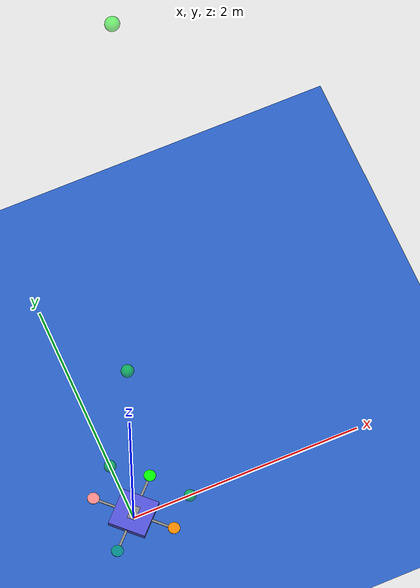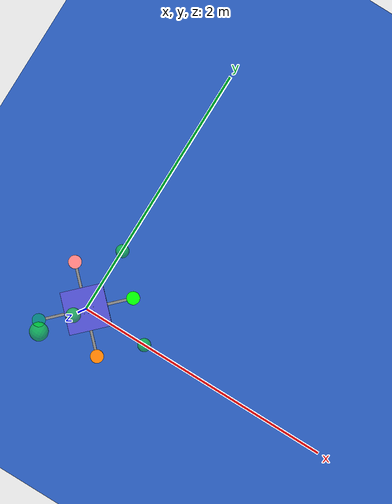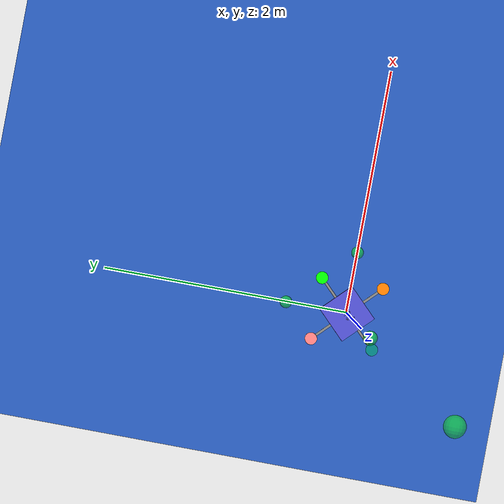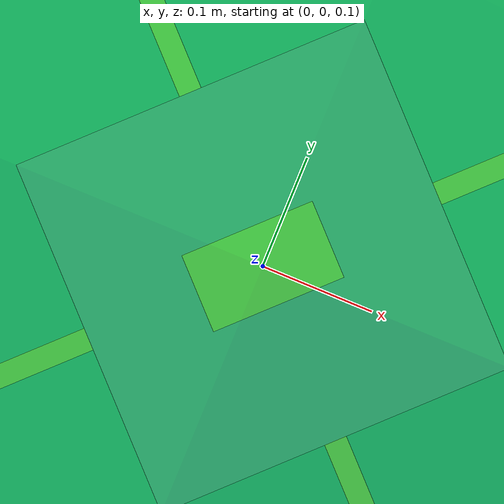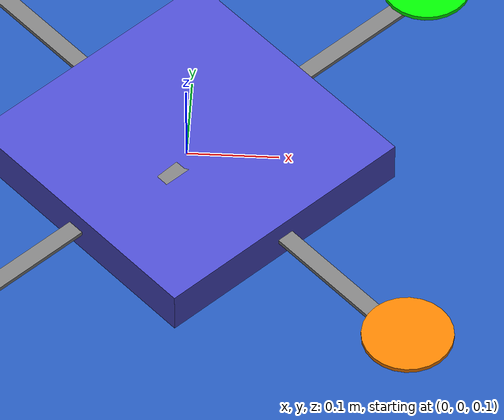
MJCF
<mujoco model="Quadrotor">
  <compiler inertiafromgeom="true" coordinate="local"/>
  <option timestep="0.04" gravity="0 0 -9.81" wind="0 0 0" density="1.225" viscosity="1.48e-5" />

  <asset>
    <texture name="blue_grid" type="2d" builtin="checker" rgb1=".02 .14 .44" rgb2=".27 .55 1" width="300" height="300" mark="edge" markrgb="1 1 1"/>
    <material name="blue_grid" texture="blue_grid" texrepeat="1 1" texuniform="true" reflectance=".2"/>

    <texture name="grey_grid" type="2d" builtin="checker" rgb1=".26 .26 .26" rgb2=".6 .6 .6" width="300" height="300" mark="edge" markrgb="1 1 1"/>
    <material name="grey_grid" texture="blue_grid" texrepeat="1 1" texuniform="true" reflectance=".2"/>
    <texture name="skybox" type="skybox" builtin="gradient" rgb1=".66 .79 1" rgb2=".9 .91 .93" width="800" height="800"/>

    <material name="self" rgba=".7 .5 .3 1"/>
    <material name="self_default" rgba=".7 .5 .3 1"/>
    <material name="self_highlight" rgba="0 .5 .3 1"/>
    <material name="effector" rgba=".7 .4 .2 1"/>
    <material name="effector_default" rgba=".7 .4 .2 1"/>
    <material name="effector_highlight" rgba="0 .5 .3 1"/>
    <material name="decoration" rgba=".2 .6 .3 1"/>
    <material name="eye" rgba="0 .2 1 1"/>
    <material name="target" rgba=".6 .3 .3 1"/>
    <material name="target_default" rgba=".6 .3 .3 1"/>
    <material name="target_highlight" rgba=".6 .3 .3 .4"/>
    <material name="site" rgba=".5 .5 .5 .3"/>
  </asset>

  <worldbody>
    <light diffuse=".5 .5 .5" pos="0 0 3" dir="0 0 -1"/>
    <geom name="floor" type="plane" conaffinity="1" size="100 100 .2" material="blue_grid"/>
    <body name="goal" mocap="true" pos="0.0 0.0 8.5" quat="0.0 0.70710678 0.0 0.70710678">
      <geom type="sphere" size="0.05" contype="0" conaffinity="0" rgba="0 1 0 .5"/>
    </body>
    <body name="goal2" mocap="true" pos="0.5 0.0 0.0" quat="0.0 0.70710678 0.0 0.70710678">
      <geom type="sphere" size="0.05" contype="0" conaffinity="0" rgba="0 1 0 .5"/>
    </body>
     <body name="goal3" mocap="true" pos="0.0 0.5 0.0" quat="0.0 0.70710678 0.0 0.70710678">
      <geom type="sphere" size="0.05" contype="0" conaffinity="0" rgba="0 1 0 .5"/>
    </body>
     <body name="goal4" mocap="true" pos="0.0 0.0 3.0" quat="0.0 0.70710678 0.0 0.70710678">
      <geom type="sphere" size="0.05" contype="0" conaffinity="0" rgba="0 1 0 .5"/>
    </body>

    <body name="quadrotor" pos="0 0 0.1">
      <body name="core" pos="0 0 0" quat = ".924 0.0 0.0 0.383">
        <geom type="box" size="0.16 0.16 0.025"  rgba="0.3 0.3 0.8 1" mass = ".76072"/>
        <site name="body" type="box" />
      </body>

      <body name="a00" pos=".071 0.071 0.0" quat = ".924 0.0 0.0 0.383">
        <joint name="tilta10" type="hinge" axis="-1 0 0"/>
        <geom type="box" size="0.254 0.01 0.0025"  rgba="0.5 0.5 0.5 1" mass="0.0285"/>
        <geom name="thruster0" type="cylinder" pos=" 0.254  0  0.01" size="0.05 0.0025"  rgba="0 1.0 0 1" mass="0.0655"/>
        <site name="thruster0" type="cylinder"/>
      </body>

      <body name="a20" pos="-0.071 -0.071 0.0" quat = "-.383 0.0 0.0 0.924">
        <joint name="tilta30" type="hinge" axis="-1 0 0"/>
        <geom type="box" size="0.254 0.01 0.0025"  rgba="0.5 0.5 0.5 1" mass="0.0285"/>
        <geom name="thruster2" type="cylinder" pos=" 0.254  0  0.01" size="0.05 0.0025"  rgba="0.0 0.5 0.5 1" mass="0.0655"/>
        <site name="thruster2" type="cylinder"/>
      </body>

      <body name="a30" pos="0.071 -0.071 0.0" quat = ".383 0.0 0.0 0.924">
        <joint name="tilta20" type="hinge" axis="1 0 0"/>
        <geom type="box" size="0.254 0.01 0.0025"  rgba="0.5 0.5 0.5 1" mass="0.0285"/>
        <geom name="thruster3" type="cylinder" pos=" -0.254  0  0.01" size="0.05 0.0025"  rgba="1.0 0.5 0 1" mass="0.0655"/>
        <site name="thruster3" type="cylinder"/>
      </body>

      <body name="a40" pos="-0.071 0.071 0.0" quat = ".924 0.0 0.0 -.383">
        <joint name="tilta40" type="hinge" axis="1 0 0"/>
        <geom type="box" size="0.254 0.01 0.0025"  rgba="0.5 0.5 0.5 1" mass="0.0285"/>
        <geom name="thruster4" type="cylinder" pos="-0.254  0  0.01" size="0.05 0.0025"  rgba="1.0 0.5 0.5 1" mass="0.0655"/>
        <site name="thruster4" type="cylinder"/>
      </body>

      <joint name="root"   type="free" damping="0" armature="0" pos="0 0 0" />

      <!-- Actuator sites to attach actuators  -->
      <site name="sensor" type="box" pos="0 0 0"  size="0.06 0.035 0.025"  quat = "0.924 0.0 0.0 0.383" rgba="0.5 0.5 0.5 1"/>

      <!-- Thruster geometries for collisions since site's are excluded from collision checking -->

            <!-- Visualization of the coordinate frame -->
    </body>
  </worldbody>
    <actuator>
      <motor ctrllimited="true" ctrlrange="-10.0 10.0" gear="0  0. 1. 0. 0. .1" site="thruster0"/>
      <motor ctrllimited="true" ctrlrange="-10.0 10.0" gear="0  0. 1. 0. 0. .1" site="thruster3"/>
      <motor ctrllimited="true" ctrlrange="-10.0 10.0" gear="0  0. 1. 0. 0. -.1" site="thruster2"/>
      <motor ctrllimited="true" ctrlrange="-10.0 10.0" gear="0  0. 1. 0. 0. -.1" site="thruster4"/>
      <motor gear="1" joint="tilta10"/>
      <motor gear="1" joint="tilta30"/>
      <motor gear="1" joint="tilta20"/>
      <motor gear="1" joint="tilta40"/>
    </actuator>
    <sensor>
      <jointpos name="tiltangle1" joint="tilta10"/>
      <jointvel name="tiltvel1" joint="tilta10"/>
      <jointpos name="tiltangle2" joint="tilta20"/>
      <jointvel name="tiltvel2" joint="tilta20"/>
      <jointpos name="tiltangle3" joint="tilta30"/>
      <jointvel name="tiltvel3" joint="tilta30"/>
      <jointpos name="tiltangle4" joint="tilta40"/>
      <jointvel name="tiltvel4" joint="tilta40"/>
      <velocimeter name="xyzvel" site="body"/>
      <gyro name="rpyvel" site="body"/>

      <accelerometer name="xyzacc" site="body"/>

    </sensor>
</mujoco>
